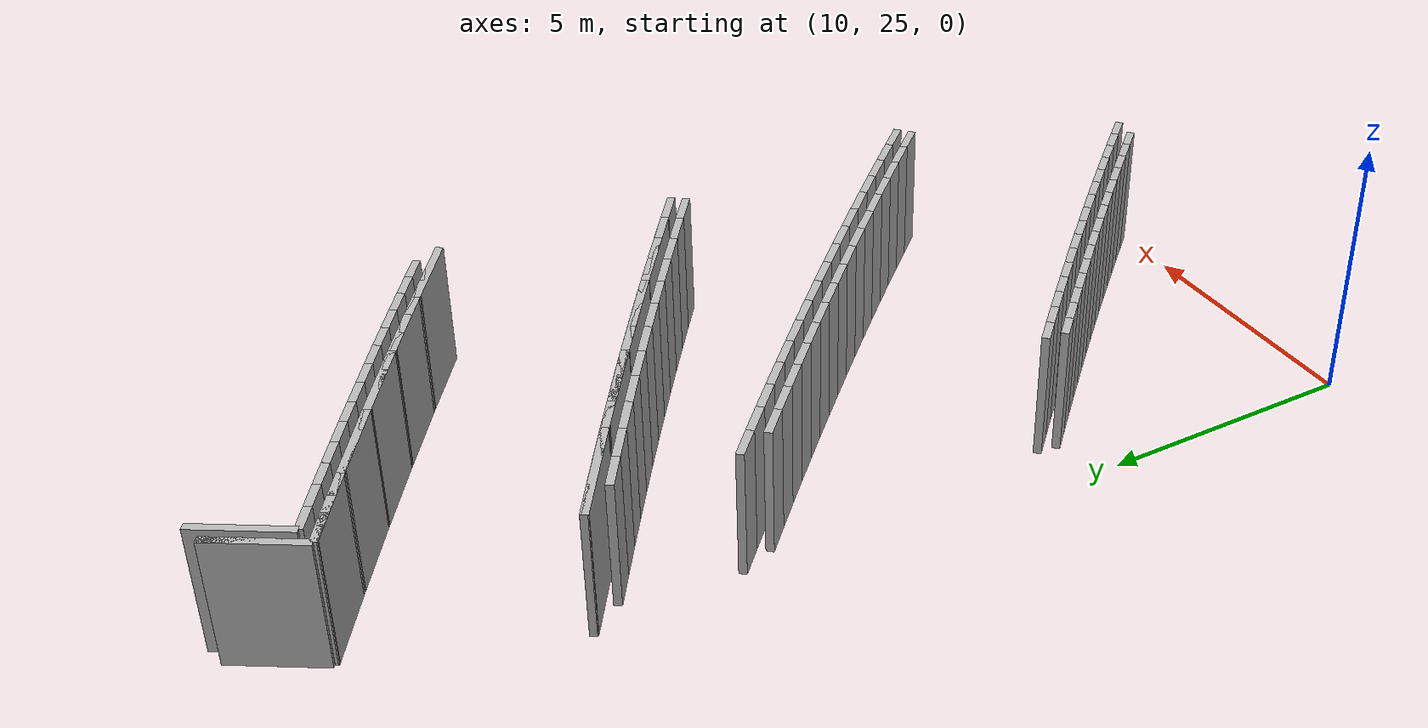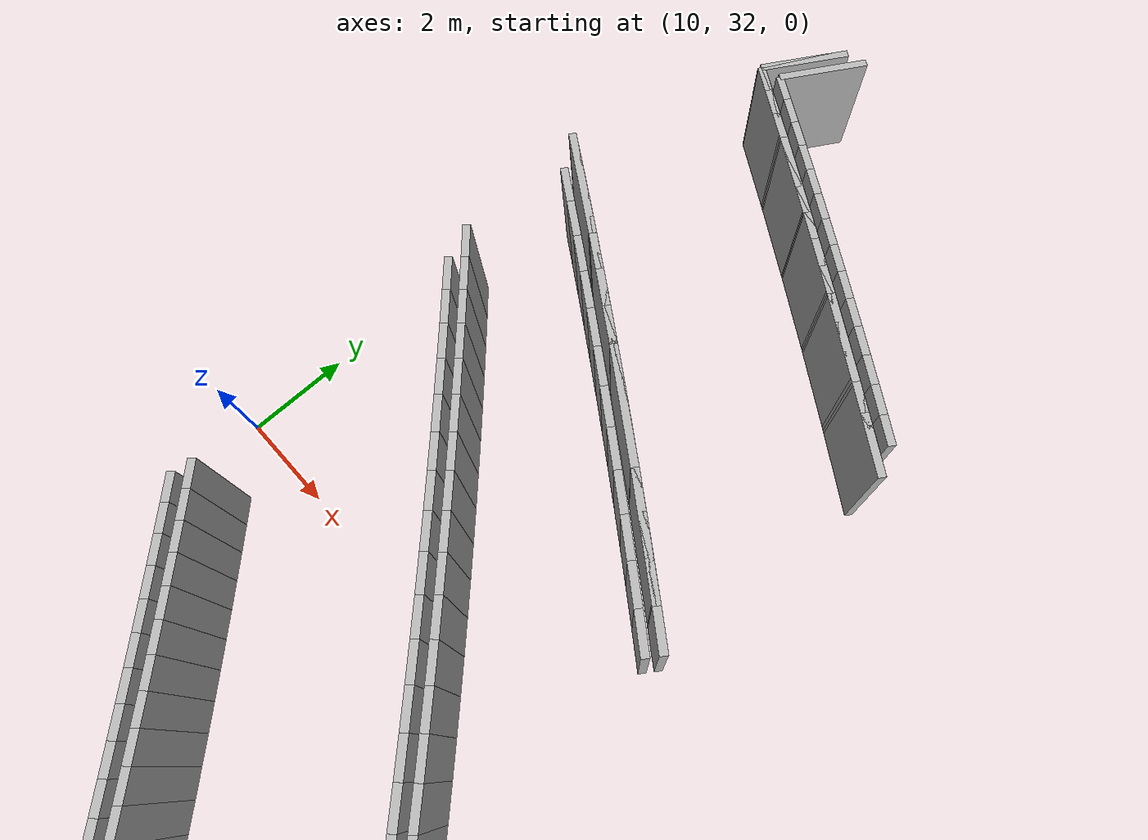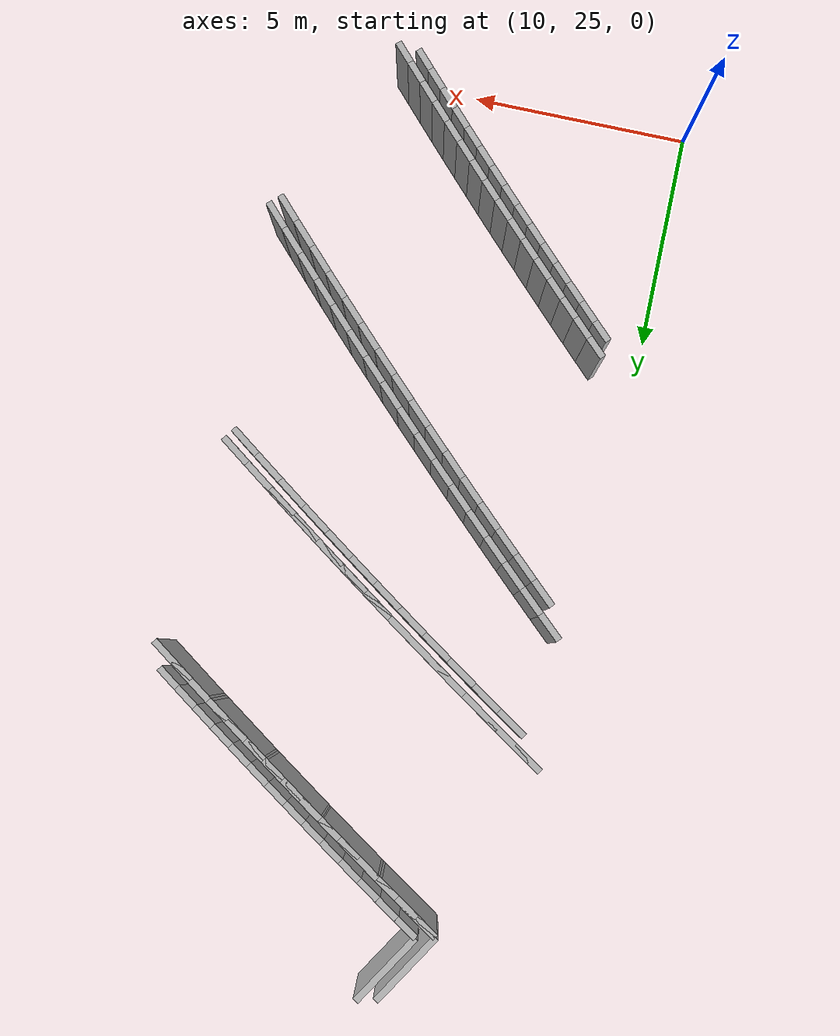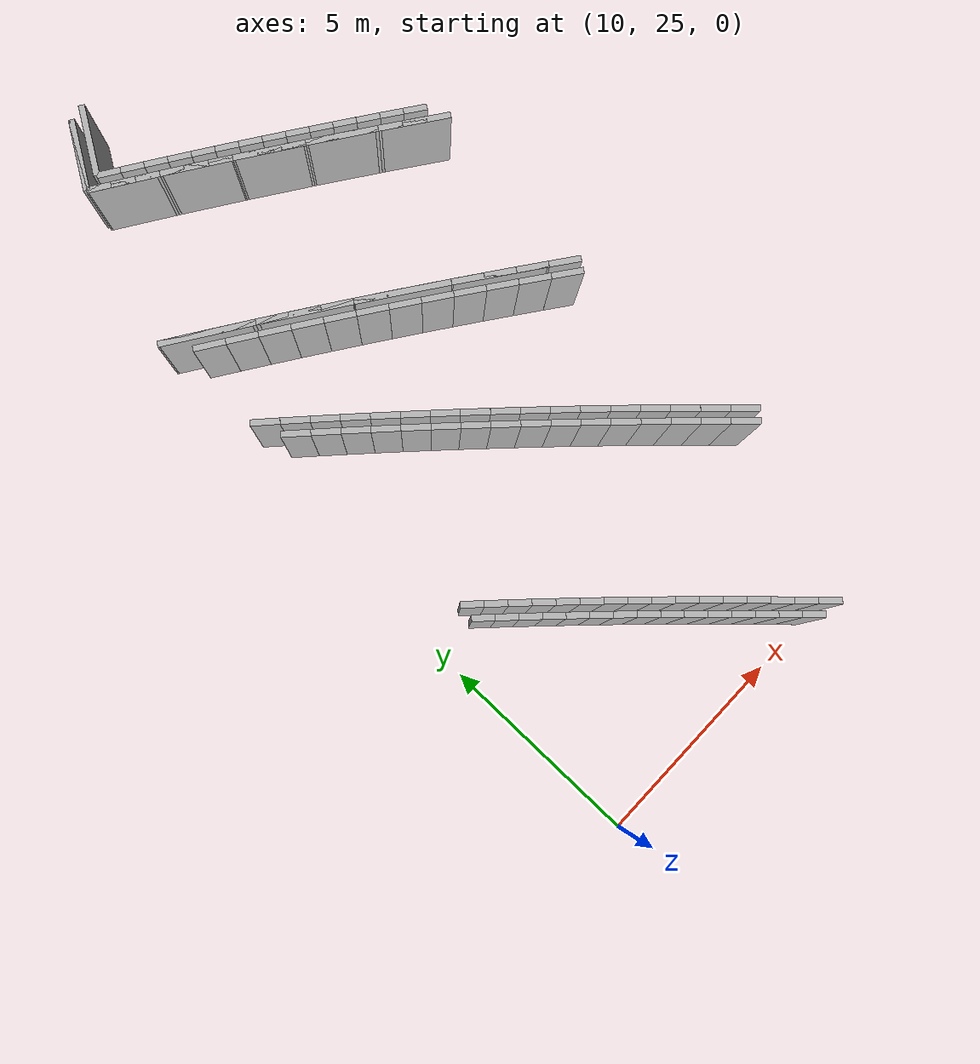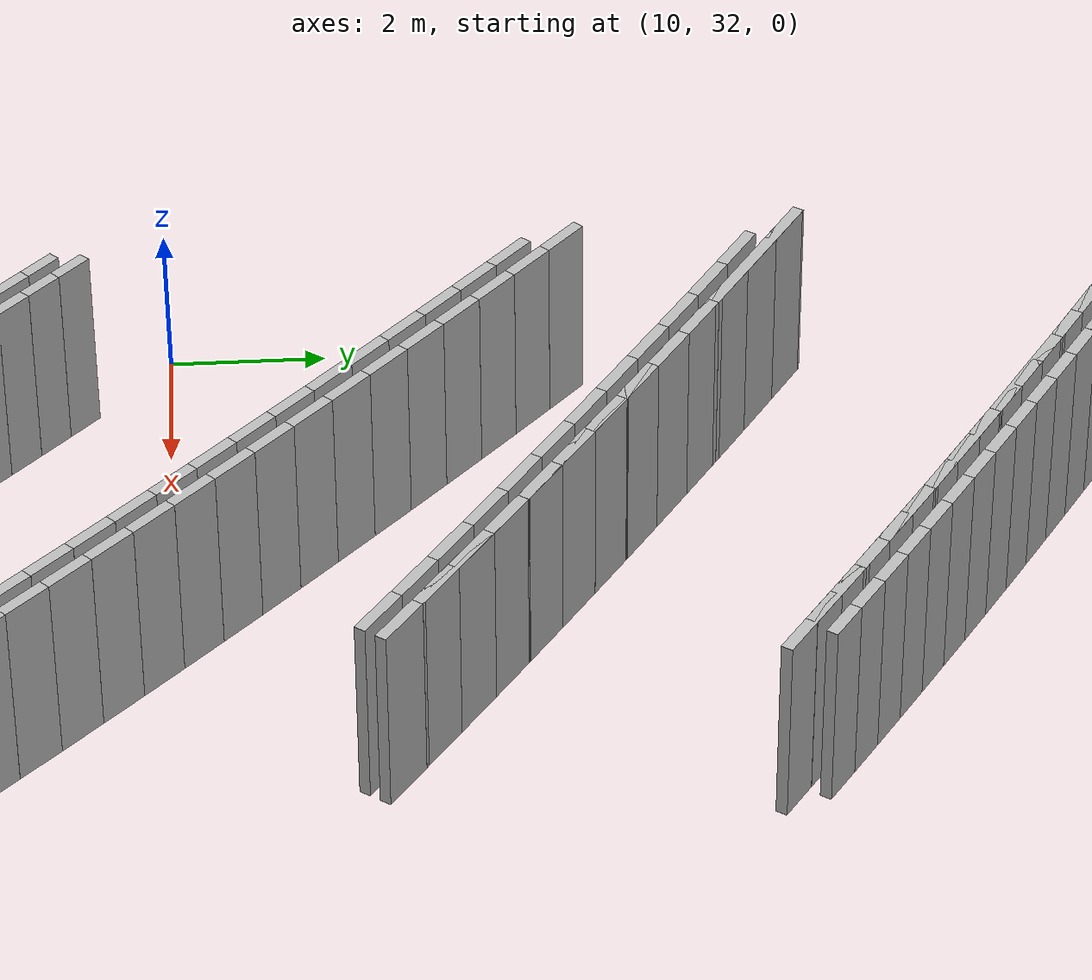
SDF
<sdf version="1.6">
 <model name="sps_0506">
  <static>1</static>
  <allow_auto_disable>0</allow_auto_disable>
  <link name="Wall1528">
   <collision name="collision"><geometry><box><size>1.79999 0.15 2.5</size></box></geometry></collision>
   <visual name="visual">
    <geometry><box><size>1.79999 0.15 2.5</size></box></geometry>
    <transparency>0.0</transparency>
   </visual>
   <pose>12.5018 44.6357 1.25 0 0 -2.13528</pose>
  </link>
  <link name="Wall1835">
   <collision name="collision"><geometry><box><size>1.79998 0.15 2.5</size></box></geometry></collision>
   <visual name="visual">
    <geometry><box><size>1.79998 0.15 2.5</size></box></geometry>
    <transparency>0.0</transparency>
   </visual>
   <pose>12.9161 44.7287 1.25 0 -0 1.00639</pose>
  </link>
  <link name="Wall3640">
   <collision name="collision"><geometry><box><size>1.80002 0.15 2.5</size></box></geometry></collision>
   <visual name="visual">
    <geometry><box><size>1.80002 0.15 2.5</size></box></geometry>
    <transparency>0.0</transparency>
   </visual>
   <pose>12.502 44.6357 1.25 0 0 -2.1353</pose>
  </link>
  <link name="Wall3641">
   <collision name="collision"><geometry><box><size>1.72938 0.15 2.5</size></box></geometry></collision>
   <visual name="visual">
    <geometry><box><size>1.72938 0.15 2.5</size></box></geometry>
    <transparency>0.0</transparency>
   </visual>
   <pose>12.7476 43.4073 1.25 0 0 -0.571929</pose>
  </link>
  <link name="Wall3642">
   <collision name="collision"><geometry><box><size>1.72959 0.15 2.5</size></box></geometry></collision>
   <visual name="visual">
    <geometry><box><size>1.72959 0.15 2.5</size></box></geometry>
    <transparency>0.0</transparency>
   </visual>
   <pose>14.1968 42.4636 1.25 0 0 -0.582463</pose>
  </link>
  <link name="Wall3643">
   <collision name="collision"><geometry><box><size>1.7295 0.15 2.5</size></box></geometry></collision>
   <visual name="visual">
    <geometry><box><size>1.7295 0.15 2.5</size></box></geometry>
    <transparency>0.0</transparency>
   </visual>
   <pose>15.6363 41.5048 1.25 0 0 -0.59276</pose>
  </link>
  <link name="Wall3644">
   <collision name="collision"><geometry><box><size>1.72963 0.15 2.5</size></box></geometry></collision>
   <visual name="visual">
    <geometry><box><size>1.72963 0.15 2.5</size></box></geometry>
    <transparency>0.0</transparency>
   </visual>
   <pose>17.0657 40.5311 1.25 0 0 -0.603212</pose>
  </link>
  <link name="Wall3645">
   <collision name="collision"><geometry><box><size>1.72955 0.15 2.5</size></box></geometry></collision>
   <visual name="visual">
    <geometry><box><size>1.72955 0.15 2.5</size></box></geometry>
    <transparency>0.0</transparency>
   </visual>
   <pose>18.4849 39.5425 1.25 0 0 -0.613649</pose>
  </link>
  <link name="Wall3670">
   <collision name="collision"><geometry><box><size>2.27698 0.15 2.5</size></box></geometry></collision>
   <visual name="visual">
    <geometry><box><size>2.27698 0.15 2.5</size></box></geometry>
    <transparency>0.0</transparency>
   </visual>
   <pose>17.1625 35.5677 1.25 0 -0 2.52041</pose>
  </link>
  <link name="Wall3671">
   <collision name="collision"><geometry><box><size>2.27686 0.15 2.5</size></box></geometry></collision>
   <visual name="visual">
    <geometry><box><size>2.27686 0.15 2.5</size></box></geometry>
    <transparency>0.0</transparency>
   </visual>
   <pose>15.3017 36.8799 1.25 0 -0 2.53435</pose>
  </link>
  <link name="Wall3672">
   <collision name="collision"><geometry><box><size>2.27673 0.15 2.5</size></box></geometry></collision>
   <visual name="visual">
    <geometry><box><size>2.27673 0.15 2.5</size></box></geometry>
    <transparency>0.0</transparency>
   </visual>
   <pose>13.4231 38.166 1.25 0 -0 2.54824</pose>
  </link>
  <link name="Wall3673">
   <collision name="collision"><geometry><box><size>2.27685 0.15 2.5</size></box></geometry></collision>
   <visual name="visual">
    <geometry><box><size>2.27685 0.15 2.5</size></box></geometry>
    <transparency>0.0</transparency>
   </visual>
   <pose>11.5266 39.4257 1.25 0 -0 2.56231</pose>
  </link>
  <link name="Wall6894">
   <collision name="collision"><geometry><box><size>0.576575 0.15 2.5</size></box></geometry></collision>
   <visual name="visual">
    <geometry><box><size>0.576575 0.15 2.5</size></box></geometry>
    <transparency>0.0</transparency>
   </visual>
   <pose>18.4858 39.5441 1.25 0 -0 2.52793</pose>
  </link>
  <link name="Wall6895">
   <collision name="collision"><geometry><box><size>0.576678 0.15 2.5</size></box></geometry></collision>
   <visual name="visual">
    <geometry><box><size>0.576678 0.15 2.5</size></box></geometry>
    <transparency>0.0</transparency>
   </visual>
   <pose>18.0138 39.8753 1.25 0 -0 2.53154</pose>
  </link>
  <link name="Wall6896">
   <collision name="collision"><geometry><box><size>0.576522 0.15 2.5</size></box></geometry></collision>
   <visual name="visual">
    <geometry><box><size>0.576522 0.15 2.5</size></box></geometry>
    <transparency>0.0</transparency>
   </visual>
   <pose>17.5406 40.2049 1.25 0 -0 2.53471</pose>
  </link>
  <link name="Wall6897">
   <collision name="collision"><geometry><box><size>0.576368 0.15 2.5</size></box></geometry></collision>
   <visual name="visual">
    <geometry><box><size>0.576368 0.15 2.5</size></box></geometry>
    <transparency>0.0</transparency>
   </visual>
   <pose>17.0666 40.5328 1.25 0 -0 2.53826</pose>
  </link>
  <link name="Wall6898">
   <collision name="collision"><geometry><box><size>0.576593 0.15 2.5</size></box></geometry></collision>
   <visual name="visual">
    <geometry><box><size>0.576593 0.15 2.5</size></box></geometry>
    <transparency>0.0</transparency>
   </visual>
   <pose>16.5912 40.859 1.25 0 -0 2.54199</pose>
  </link>
  <link name="Wall6899">
   <collision name="collision"><geometry><box><size>0.576404 0.15 2.5</size></box></geometry></collision>
   <visual name="visual">
    <geometry><box><size>0.576404 0.15 2.5</size></box></geometry>
    <transparency>0.0</transparency>
   </visual>
   <pose>16.1147 41.1835 1.25 0 -0 2.54548</pose>
  </link>
  <link name="Wall6900">
   <collision name="collision"><geometry><box><size>0.576629 0.15 2.5</size></box></geometry></collision>
   <visual name="visual">
    <geometry><box><size>0.576629 0.15 2.5</size></box></geometry>
    <transparency>0.0</transparency>
   </visual>
   <pose>15.6371 41.5064 1.25 0 -0 2.54869</pose>
  </link>
  <link name="Wall6901">
   <collision name="collision"><geometry><box><size>0.576419 0.15 2.5</size></box></geometry></collision>
   <visual name="visual">
    <geometry><box><size>0.576419 0.15 2.5</size></box></geometry>
    <transparency>0.0</transparency>
   </visual>
   <pose>15.1584 41.8277 1.25 0 -0 2.55227</pose>
  </link>
  <link name="Wall6902">
   <collision name="collision"><geometry><box><size>0.576589 0.15 2.5</size></box></geometry></collision>
   <visual name="visual">
    <geometry><box><size>0.576589 0.15 2.5</size></box></geometry>
    <transparency>0.0</transparency>
   </visual>
   <pose>14.6786 42.1473 1.25 0 -0 2.55565</pose>
  </link>
  <link name="Wall6903">
   <collision name="collision"><geometry><box><size>0.576361 0.15 2.5</size></box></geometry></collision>
   <visual name="visual">
    <geometry><box><size>0.576361 0.15 2.5</size></box></geometry>
    <transparency>0.0</transparency>
   </visual>
   <pose>14.1977 42.4652 1.25 0 -0 2.55932</pose>
  </link>
  <link name="Wall6904">
   <collision name="collision"><geometry><box><size>0.576544 0.15 2.5</size></box></geometry></collision>
   <visual name="visual">
    <geometry><box><size>0.576544 0.15 2.5</size></box></geometry>
    <transparency>0.0</transparency>
   </visual>
   <pose>13.7158 42.7814 1.25 0 -0 2.56269</pose>
  </link>
  <link name="Wall6905">
   <collision name="collision"><geometry><box><size>0.576463 0.15 2.5</size></box></geometry></collision>
   <visual name="visual">
    <geometry><box><size>0.576463 0.15 2.5</size></box></geometry>
    <transparency>0.0</transparency>
   </visual>
   <pose>13.2327 43.096 1.25 0 -0 2.56601</pose>
  </link>
  <link name="Wall6906">
   <collision name="collision"><geometry><box><size>0.576528 0.15 2.5</size></box></geometry></collision>
   <visual name="visual">
    <geometry><box><size>0.576528 0.15 2.5</size></box></geometry>
    <transparency>0.0</transparency>
   </visual>
   <pose>12.7485 43.4089 1.25 0 -0 2.56974</pose>
  </link>
  <link name="Wall6907">
   <collision name="collision"><geometry><box><size>0.576493 0.15 2.5</size></box></geometry></collision>
   <visual name="visual">
    <geometry><box><size>0.576493 0.15 2.5</size></box></geometry>
    <transparency>0.0</transparency>
   </visual>
   <pose>12.2632 43.7201 1.25 0 -0 2.57297</pose>
  </link>
  <link name="Wall9599">
   <collision name="collision"><geometry><box><size>0.757581 0.15 2.5</size></box></geometry></collision>
   <visual name="visual">
    <geometry><box><size>0.757581 0.15 2.5</size></box></geometry>
    <transparency>0.0</transparency>
   </visual>
   <pose>18.2241 34.4485 1.25 0 -0 2.51085</pose>
  </link>
  <link name="Wall9600">
   <collision name="collision"><geometry><box><size>0.757552 0.15 2.5</size></box></geometry></collision>
   <visual name="visual">
    <geometry><box><size>0.757552 0.15 2.5</size></box></geometry>
    <transparency>0.0</transparency>
   </visual>
   <pose>17.6113 34.8938 1.25 0 -0 2.5157</pose>
  </link>
  <link name="Wall9601">
   <collision name="collision"><geometry><box><size>0.757632 0.15 2.5</size></box></geometry></collision>
   <visual name="visual">
    <geometry><box><size>0.757632 0.15 2.5</size></box></geometry>
    <transparency>0.0</transparency>
   </visual>
   <pose>16.9963 35.3362 1.25 0 -0 2.52025</pose>
  </link>
  <link name="Wall9602">
   <collision name="collision"><geometry><box><size>0.757652 0.15 2.5</size></box></geometry></collision>
   <visual name="visual">
    <geometry><box><size>0.757652 0.15 2.5</size></box></geometry>
    <transparency>0.0</transparency>
   </visual>
   <pose>16.3791 35.7757 1.25 0 -0 2.52521</pose>
  </link>
  <link name="Wall9603">
   <collision name="collision"><geometry><box><size>0.75748 0.15 2.5</size></box></geometry></collision>
   <visual name="visual">
    <geometry><box><size>0.75748 0.15 2.5</size></box></geometry>
    <transparency>0.0</transparency>
   </visual>
   <pose>15.76 36.2123 1.25 0 -0 2.52959</pose>
  </link>
  <link name="Wall9604">
   <collision name="collision"><geometry><box><size>0.75772 0.15 2.5</size></box></geometry></collision>
   <visual name="visual">
    <geometry><box><size>0.75772 0.15 2.5</size></box></geometry>
    <transparency>0.0</transparency>
   </visual>
   <pose>15.1388 36.646 1.25 0 -0 2.53462</pose>
  </link>
  <link name="Wall9605">
   <collision name="collision"><geometry><box><size>0.757526 0.15 2.5</size></box></geometry></collision>
   <visual name="visual">
    <geometry><box><size>0.757526 0.15 2.5</size></box></geometry>
    <transparency>0.0</transparency>
   </visual>
   <pose>14.5156 37.0767 1.25 0 -0 2.53924</pose>
  </link>
  <link name="Wall9606">
   <collision name="collision"><geometry><box><size>0.757603 0.15 2.5</size></box></geometry></collision>
   <visual name="visual">
    <geometry><box><size>0.757603 0.15 2.5</size></box></geometry>
    <transparency>0.0</transparency>
   </visual>
   <pose>13.8903 37.5045 1.25 0 -0 2.5438</pose>
  </link>
  <link name="Wall9607">
   <collision name="collision"><geometry><box><size>0.757694 0.15 2.5</size></box></geometry></collision>
   <visual name="visual">
    <geometry><box><size>0.757694 0.15 2.5</size></box></geometry>
    <transparency>0.0</transparency>
   </visual>
   <pose>13.2631 37.9294 1.25 0 -0 2.54865</pose>
  </link>
  <link name="Wall9608">
   <collision name="collision"><geometry><box><size>0.757601 0.15 2.5</size></box></geometry></collision>
   <visual name="visual">
    <geometry><box><size>0.757601 0.15 2.5</size></box></geometry>
    <transparency>0.0</transparency>
   </visual>
   <pose>12.6338 38.3513 1.25 0 -0 2.55332</pose>
  </link>
  <link name="Wall9609">
   <collision name="collision"><geometry><box><size>0.757626 0.15 2.5</size></box></geometry></collision>
   <visual name="visual">
    <geometry><box><size>0.757626 0.15 2.5</size></box></geometry>
    <transparency>0.0</transparency>
   </visual>
   <pose>12.0024 38.7701 1.25 0 -0 2.55837</pose>
  </link>
  <link name="Wall9610">
   <collision name="collision"><geometry><box><size>0.757531 0.15 2.5</size></box></geometry></collision>
   <visual name="visual">
    <geometry><box><size>0.757531 0.15 2.5</size></box></geometry>
    <transparency>0.0</transparency>
   </visual>
   <pose>11.3692 39.1859 1.25 0 -0 2.56282</pose>
  </link>
  <link name="Wall19232">
   <collision name="collision"><geometry><box><size>0.516722 0.15 2.5</size></box></geometry></collision>
   <visual name="visual">
    <geometry><box><size>0.516722 0.15 2.5</size></box></geometry>
    <transparency>0.0</transparency>
   </visual>
   <pose>16.2039 25.2878 1.25 0 -0 2.3181</pose>
  </link>
  <link name="Wall19233">
   <collision name="collision"><geometry><box><size>0.516784 0.15 2.5</size></box></geometry></collision>
   <visual name="visual">
    <geometry><box><size>0.516784 0.15 2.5</size></box></geometry>
    <transparency>0.0</transparency>
   </visual>
   <pose>15.852 25.6662 1.25 0 -0 2.3217</pose>
  </link>
  <link name="Wall19234">
   <collision name="collision"><geometry><box><size>0.516735 0.15 2.5</size></box></geometry></collision>
   <visual name="visual">
    <geometry><box><size>0.516735 0.15 2.5</size></box></geometry>
    <transparency>0.0</transparency>
   </visual>
   <pose>15.4989 26.0435 1.25 0 -0 2.32453</pose>
  </link>
  <link name="Wall19235">
   <collision name="collision"><geometry><box><size>0.516679 0.15 2.5</size></box></geometry></collision>
   <visual name="visual">
    <geometry><box><size>0.516679 0.15 2.5</size></box></geometry>
    <transparency>0.0</transparency>
   </visual>
   <pose>15.1446 26.4196 1.25 0 -0 2.32821</pose>
  </link>
  <link name="Wall19236">
   <collision name="collision"><geometry><box><size>0.516892 0.15 2.5</size></box></geometry></collision>
   <visual name="visual">
    <geometry><box><size>0.516892 0.15 2.5</size></box></geometry>
    <transparency>0.0</transparency>
   </visual>
   <pose>14.7889 26.7945 1.25 0 -0 2.33156</pose>
  </link>
  <link name="Wall19237">
   <collision name="collision"><geometry><box><size>0.51672 0.15 2.5</size></box></geometry></collision>
   <visual name="visual">
    <geometry><box><size>0.51672 0.15 2.5</size></box></geometry>
    <transparency>0.0</transparency>
   </visual>
   <pose>14.4319 27.1682 1.25 0 -0 2.33514</pose>
  </link>
  <link name="Wall19238">
   <collision name="collision"><geometry><box><size>0.516731 0.15 2.5</size></box></geometry></collision>
   <visual name="visual">
    <geometry><box><size>0.516731 0.15 2.5</size></box></geometry>
    <transparency>0.0</transparency>
   </visual>
   <pose>14.0737 27.5406 1.25 0 -0 2.3384</pose>
  </link>
  <link name="Wall19239">
   <collision name="collision"><geometry><box><size>0.516792 0.15 2.5</size></box></geometry></collision>
   <visual name="visual">
    <geometry><box><size>0.516792 0.15 2.5</size></box></geometry>
    <transparency>0.0</transparency>
   </visual>
   <pose>13.7143 27.9119 1.25 0 -0 2.34141</pose>
  </link>
  <link name="Wall19240">
   <collision name="collision"><geometry><box><size>0.516638 0.15 2.5</size></box></geometry></collision>
   <visual name="visual">
    <geometry><box><size>0.516638 0.15 2.5</size></box></geometry>
    <transparency>0.0</transparency>
   </visual>
   <pose>13.3537 28.282 1.25 0 -0 2.345</pose>
  </link>
  <link name="Wall19241">
   <collision name="collision"><geometry><box><size>0.516794 0.15 2.5</size></box></geometry></collision>
   <visual name="visual">
    <geometry><box><size>0.516794 0.15 2.5</size></box></geometry>
    <transparency>0.0</transparency>
   </visual>
   <pose>12.9918 28.6508 1.25 0 -0 2.34851</pose>
  </link>
  <link name="Wall19242">
   <collision name="collision"><geometry><box><size>0.51687 0.15 2.5</size></box></geometry></collision>
   <visual name="visual">
    <geometry><box><size>0.51687 0.15 2.5</size></box></geometry>
    <transparency>0.0</transparency>
   </visual>
   <pose>12.6286 29.0185 1.25 0 -0 2.35152</pose>
  </link>
  <link name="Wall19243">
   <collision name="collision"><geometry><box><size>0.516779 0.15 2.5</size></box></geometry></collision>
   <visual name="visual">
    <geometry><box><size>0.516779 0.15 2.5</size></box></geometry>
    <transparency>0.0</transparency>
   </visual>
   <pose>12.2642 29.385 1.25 0 -0 2.35519</pose>
  </link>
  <link name="Wall19244">
   <collision name="collision"><geometry><box><size>0.516736 0.15 2.5</size></box></geometry></collision>
   <visual name="visual">
    <geometry><box><size>0.516736 0.15 2.5</size></box></geometry>
    <transparency>0.0</transparency>
   </visual>
   <pose>11.8986 29.7502 1.25 0 -0 2.35828</pose>
  </link>
  <link name="Wall19245">
   <collision name="collision"><geometry><box><size>0.516786 0.15 2.5</size></box></geometry></collision>
   <visual name="visual">
    <geometry><box><size>0.516786 0.15 2.5</size></box></geometry>
    <transparency>0.0</transparency>
   </visual>
   <pose>11.5318 30.1142 1.25 0 -0 2.36171</pose>
  </link>
  <link name="Wall19246">
   <collision name="collision"><geometry><box><size>0.516627 0.15 2.5</size></box></geometry></collision>
   <visual name="visual">
    <geometry><box><size>0.516627 0.15 2.5</size></box></geometry>
    <transparency>0.0</transparency>
   </visual>
   <pose>11.1637 30.4769 1.25 0 -0 2.36522</pose>
  </link>
  <link name="Wall21096">
   <collision name="collision"><geometry><box><size>0.758878 0.15 2.5</size></box></geometry></collision>
   <visual name="visual">
    <geometry><box><size>0.758878 0.15 2.5</size></box></geometry>
    <transparency>0.0</transparency>
   </visual>
   <pose>18.3943 34.6814 1.25 0 -0 2.51111</pose>
  </link>
  <link name="Wall21097">
   <collision name="collision"><geometry><box><size>0.758857 0.15 2.5</size></box></geometry></collision>
   <visual name="visual">
    <geometry><box><size>0.758857 0.15 2.5</size></box></geometry>
    <transparency>0.0</transparency>
   </visual>
   <pose>17.7804 35.1274 1.25 0 -0 2.51566</pose>
  </link>
  <link name="Wall21098">
   <collision name="collision"><geometry><box><size>0.759037 0.15 2.5</size></box></geometry></collision>
   <visual name="visual">
    <geometry><box><size>0.759037 0.15 2.5</size></box></geometry>
    <transparency>0.0</transparency>
   </visual>
   <pose>17.1643 35.5706 1.25 0 -0 2.52029</pose>
  </link>
  <link name="Wall21099">
   <collision name="collision"><geometry><box><size>0.758907 0.15 2.5</size></box></geometry></collision>
   <visual name="visual">
    <geometry><box><size>0.758907 0.15 2.5</size></box></geometry>
    <transparency>0.0</transparency>
   </visual>
   <pose>16.5461 36.0109 1.25 0 -0 2.5251</pose>
  </link>
  <link name="Wall21100">
   <collision name="collision"><geometry><box><size>0.758935 0.15 2.5</size></box></geometry></collision>
   <visual name="visual">
    <geometry><box><size>0.758935 0.15 2.5</size></box></geometry>
    <transparency>0.0</transparency>
   </visual>
   <pose>15.9259 36.4483 1.25 0 -0 2.52965</pose>
  </link>
  <link name="Wall21101">
   <collision name="collision"><geometry><box><size>0.75906 0.15 2.5</size></box></geometry></collision>
   <visual name="visual">
    <geometry><box><size>0.75906 0.15 2.5</size></box></geometry>
    <transparency>0.0</transparency>
   </visual>
   <pose>15.3036 36.8828 1.25 0 -0 2.53448</pose>
  </link>
  <link name="Wall21102">
   <collision name="collision"><geometry><box><size>0.758884 0.15 2.5</size></box></geometry></collision>
   <visual name="visual">
    <geometry><box><size>0.758884 0.15 2.5</size></box></geometry>
    <transparency>0.0</transparency>
   </visual>
   <pose>14.6793 37.3144 1.25 0 -0 2.53891</pose>
  </link>
  <link name="Wall21103">
   <collision name="collision"><geometry><box><size>0.759008 0.15 2.5</size></box></geometry></collision>
   <visual name="visual">
    <geometry><box><size>0.759008 0.15 2.5</size></box></geometry>
    <transparency>0.0</transparency>
   </visual>
   <pose>14.053 37.7431 1.25 0 -0 2.5438</pose>
  </link>
  <link name="Wall21104">
   <collision name="collision"><geometry><box><size>0.758846 0.15 2.5</size></box></geometry></collision>
   <visual name="visual">
    <geometry><box><size>0.758846 0.15 2.5</size></box></geometry>
    <transparency>0.0</transparency>
   </visual>
   <pose>13.4247 38.1688 1.25 0 -0 2.54841</pose>
  </link>
  <link name="Wall21105">
   <collision name="collision"><geometry><box><size>0.758989 0.15 2.5</size></box></geometry></collision>
   <visual name="visual">
    <geometry><box><size>0.758989 0.15 2.5</size></box></geometry>
    <transparency>0.0</transparency>
   </visual>
   <pose>12.7945 38.5916 1.25 0 -0 2.5529</pose>
  </link>
  <link name="Wall21106">
   <collision name="collision"><geometry><box><size>0.758875 0.15 2.5</size></box></geometry></collision>
   <visual name="visual">
    <geometry><box><size>0.758875 0.15 2.5</size></box></geometry>
    <transparency>0.0</transparency>
   </visual>
   <pose>12.1623 39.0116 1.25 0 -0 2.55734</pose>
  </link>
  <link name="Wall21107">
   <collision name="collision"><geometry><box><size>0.758967 0.15 2.5</size></box></geometry></collision>
   <visual name="visual">
    <geometry><box><size>0.758967 0.15 2.5</size></box></geometry>
    <transparency>0.0</transparency>
   </visual>
   <pose>11.5283 39.4286 1.25 0 -0 2.56242</pose>
  </link>
  <link name="Wall21108">
   <collision name="collision"><geometry><box><size>0.758971 0.15 2.5</size></box></geometry></collision>
   <visual name="visual">
    <geometry><box><size>0.758971 0.15 2.5</size></box></geometry>
    <transparency>0.0</transparency>
   </visual>
   <pose>10.8921 39.8426 1.25 0 -0 2.56684</pose>
  </link>
  <link name="Wall21149">
   <collision name="collision"><geometry><box><size>0.56105 0.15 2.5</size></box></geometry></collision>
   <visual name="visual">
    <geometry><box><size>0.56105 0.15 2.5</size></box></geometry>
    <transparency>0.0</transparency>
   </visual>
   <pose>18.7226 39.7487 1.25 0 -0 2.52773</pose>
  </link>
  <link name="Wall21150">
   <collision name="collision"><geometry><box><size>0.561042 0.15 2.5</size></box></geometry></collision>
   <visual name="visual">
    <geometry><box><size>0.561042 0.15 2.5</size></box></geometry>
    <transparency>0.0</transparency>
   </visual>
   <pose>18.2634 40.0712 1.25 0 -0 2.53078</pose>
  </link>
  <link name="Wall21151">
   <collision name="collision"><geometry><box><size>0.561031 0.15 2.5</size></box></geometry></collision>
   <visual name="visual">
    <geometry><box><size>0.561031 0.15 2.5</size></box></geometry>
    <transparency>0.0</transparency>
   </visual>
   <pose>17.8032 40.3921 1.25 0 -0 2.53461</pose>
  </link>
  <link name="Wall21152">
   <collision name="collision"><geometry><box><size>0.560931 0.15 2.5</size></box></geometry></collision>
   <visual name="visual">
    <geometry><box><size>0.560931 0.15 2.5</size></box></geometry>
    <transparency>0.0</transparency>
   </visual>
   <pose>17.3419 40.7113 1.25 0 -0 2.53793</pose>
  </link>
  <link name="Wall21153">
   <collision name="collision"><geometry><box><size>0.561004 0.15 2.5</size></box></geometry></collision>
   <visual name="visual">
    <geometry><box><size>0.561004 0.15 2.5</size></box></geometry>
    <transparency>0.0</transparency>
   </visual>
   <pose>16.8795 41.0289 1.25 0 -0 2.54158</pose>
  </link>
  <link name="Wall21154">
   <collision name="collision"><geometry><box><size>0.560903 0.15 2.5</size></box></geometry></collision>
   <visual name="visual">
    <geometry><box><size>0.560903 0.15 2.5</size></box></geometry>
    <transparency>0.0</transparency>
   </visual>
   <pose>16.4161 41.345 1.25 0 -0 2.54435</pose>
  </link>
  <link name="Wall21155">
   <collision name="collision"><geometry><box><size>0.560939 0.15 2.5</size></box></geometry></collision>
   <visual name="visual">
    <geometry><box><size>0.560939 0.15 2.5</size></box></geometry>
    <transparency>0.0</transparency>
   </visual>
   <pose>15.9517 41.6596 1.25 0 -0 2.54795</pose>
  </link>
  <link name="Wall21156">
   <collision name="collision"><geometry><box><size>0.561066 0.15 2.5</size></box></geometry></collision>
   <visual name="visual">
    <geometry><box><size>0.561066 0.15 2.5</size></box></geometry>
    <transparency>0.0</transparency>
   </visual>
   <pose>15.4862 41.9726 1.25 0 -0 2.55151</pose>
  </link>
  <link name="Wall21157">
   <collision name="collision"><geometry><box><size>0.560896 0.15 2.5</size></box></geometry></collision>
   <visual name="visual">
    <geometry><box><size>0.560896 0.15 2.5</size></box></geometry>
    <transparency>0.0</transparency>
   </visual>
   <pose>15.0196 42.284 1.25 0 -0 2.55471</pose>
  </link>
  <link name="Wall21158">
   <collision name="collision"><geometry><box><size>0.561139 0.15 2.5</size></box></geometry></collision>
   <visual name="visual">
    <geometry><box><size>0.561139 0.15 2.5</size></box></geometry>
    <transparency>0.0</transparency>
   </visual>
   <pose>14.5518 42.5938 1.25 0 -0 2.55839</pose>
  </link>
  <link name="Wall21159">
   <collision name="collision"><geometry><box><size>0.560897 0.15 2.5</size></box></geometry></collision>
   <visual name="visual">
    <geometry><box><size>0.560897 0.15 2.5</size></box></geometry>
    <transparency>0.0</transparency>
   </visual>
   <pose>14.0831 42.902 1.25 0 -0 2.56162</pose>
  </link>
  <link name="Wall21160">
   <collision name="collision"><geometry><box><size>0.560899 0.15 2.5</size></box></geometry></collision>
   <visual name="visual">
    <geometry><box><size>0.560899 0.15 2.5</size></box></geometry>
    <transparency>0.0</transparency>
   </visual>
   <pose>13.6134 43.2086 1.25 0 -0 2.565</pose>
  </link>
  <link name="Wall21161">
   <collision name="collision"><geometry><box><size>0.561009 0.15 2.5</size></box></geometry></collision>
   <visual name="visual">
    <geometry><box><size>0.561009 0.15 2.5</size></box></geometry>
    <transparency>0.0</transparency>
   </visual>
   <pose>13.1426 43.5136 1.25 0 -0 2.5685</pose>
  </link>
  <link name="Wall21162">
   <collision name="collision"><geometry><box><size>0.560869 0.15 2.5</size></box></geometry></collision>
   <visual name="visual">
    <geometry><box><size>0.560869 0.15 2.5</size></box></geometry>
    <transparency>0.0</transparency>
   </visual>
   <pose>12.6708 43.817 1.25 0 -0 2.5717</pose>
  </link>
  <link name="Wall24910">
   <collision name="collision"><geometry><box><size>0.52312 0.15 2.5</size></box></geometry></collision>
   <visual name="visual">
    <geometry><box><size>0.52312 0.15 2.5</size></box></geometry>
    <transparency>0.0</transparency>
   </visual>
   <pose>16.6765 25.2222 1.25 0 -0 2.31568</pose>
  </link>
  <link name="Wall24911">
   <collision name="collision"><geometry><box><size>0.523136 0.15 2.5</size></box></geometry></collision>
   <visual name="visual">
    <geometry><box><size>0.523136 0.15 2.5</size></box></geometry>
    <transparency>0.0</transparency>
   </visual>
   <pose>16.3213 25.6062 1.25 0 -0 2.31914</pose>
  </link>
  <link name="Wall24912">
   <collision name="collision"><geometry><box><size>0.523162 0.15 2.5</size></box></geometry></collision>
   <visual name="visual">
    <geometry><box><size>0.523162 0.15 2.5</size></box></geometry>
    <transparency>0.0</transparency>
   </visual>
   <pose>15.9647 25.989 1.25 0 -0 2.32245</pose>
  </link>
  <link name="Wall24913">
   <collision name="collision"><geometry><box><size>0.523368 0.15 2.5</size></box></geometry></collision>
   <visual name="visual">
    <geometry><box><size>0.523368 0.15 2.5</size></box></geometry>
    <transparency>0.0</transparency>
   </visual>
   <pose>15.6067 26.3707 1.25 0 -0 2.3256</pose>
  </link>
  <link name="Wall24914">
   <collision name="collision"><geometry><box><size>0.523185 0.15 2.5</size></box></geometry></collision>
   <visual name="visual">
    <geometry><box><size>0.523185 0.15 2.5</size></box></geometry>
    <transparency>0.0</transparency>
   </visual>
   <pose>15.2476 26.7512 1.25 0 -0 2.32913</pose>
  </link>
  <link name="Wall24915">
   <collision name="collision"><geometry><box><size>0.523267 0.15 2.5</size></box></geometry></collision>
   <visual name="visual">
    <geometry><box><size>0.523267 0.15 2.5</size></box></geometry>
    <transparency>0.0</transparency>
   </visual>
   <pose>14.887 27.1304 1.25 0 -0 2.33269</pose>
  </link>
  <link name="Wall24916">
   <collision name="collision"><geometry><box><size>0.523055 0.15 2.5</size></box></geometry></collision>
   <visual name="visual">
    <geometry><box><size>0.523055 0.15 2.5</size></box></geometry>
    <transparency>0.0</transparency>
   </visual>
   <pose>14.5253 27.5083 1.25 0 -0 2.33614</pose>
  </link>
  <link name="Wall24917">
   <collision name="collision"><geometry><box><size>0.523066 0.15 2.5</size></box></geometry></collision>
   <visual name="visual">
    <geometry><box><size>0.523066 0.15 2.5</size></box></geometry>
    <transparency>0.0</transparency>
   </visual>
   <pose>14.1623 27.8849 1.25 0 -0 2.33953</pose>
  </link>
  <link name="Wall24918">
   <collision name="collision"><geometry><box><size>0.523169 0.15 2.5</size></box></geometry></collision>
   <visual name="visual">
    <geometry><box><size>0.523169 0.15 2.5</size></box></geometry>
    <transparency>0.0</transparency>
   </visual>
   <pose>13.7979 28.2603 1.25 0 -0 2.34291</pose>
  </link>
  <link name="Wall24919">
   <collision name="collision"><geometry><box><size>0.523277 0.15 2.5</size></box></geometry></collision>
   <visual name="visual">
    <geometry><box><size>0.523277 0.15 2.5</size></box></geometry>
    <transparency>0.0</transparency>
   </visual>
   <pose>13.4322 28.6345 1.25 0 -0 2.34646</pose>
  </link>
  <link name="Wall24920">
   <collision name="collision"><geometry><box><size>0.523133 0.15 2.5</size></box></geometry></collision>
   <visual name="visual">
    <geometry><box><size>0.523133 0.15 2.5</size></box></geometry>
    <transparency>0.0</transparency>
   </visual>
   <pose>13.0652 29.0074 1.25 0 -0 2.35001</pose>
  </link>
  <link name="Wall24921">
   <collision name="collision"><geometry><box><size>0.523082 0.15 2.5</size></box></geometry></collision>
   <visual name="visual">
    <geometry><box><size>0.523082 0.15 2.5</size></box></geometry>
    <transparency>0.0</transparency>
   </visual>
   <pose>12.697 29.379 1.25 0 -0 2.35322</pose>
  </link>
  <link name="Wall24922">
   <collision name="collision"><geometry><box><size>0.523252 0.15 2.5</size></box></geometry></collision>
   <visual name="visual">
    <geometry><box><size>0.523252 0.15 2.5</size></box></geometry>
    <transparency>0.0</transparency>
   </visual>
   <pose>12.3277 29.7495 1.25 0 -0 2.35619</pose>
  </link>
  <link name="Wall24923">
   <collision name="collision"><geometry><box><size>0.523299 0.15 2.5</size></box></geometry></collision>
   <visual name="visual">
    <geometry><box><size>0.523299 0.15 2.5</size></box></geometry>
    <transparency>0.0</transparency>
   </visual>
   <pose>11.957 30.1188 1.25 0 -0 2.35991</pose>
  </link>
  <link name="Wall24924">
   <collision name="collision"><geometry><box><size>0.523137 0.15 2.5</size></box></geometry></collision>
   <visual name="visual">
    <geometry><box><size>0.523137 0.15 2.5</size></box></geometry>
    <transparency>0.0</transparency>
   </visual>
   <pose>11.585 30.4867 1.25 0 -0 2.36354</pose>
  </link>
  <link name="Wall24925">
   <collision name="collision"><geometry><box><size>0.523109 0.15 2.5</size></box></geometry></collision>
   <visual name="visual">
    <geometry><box><size>0.523109 0.15 2.5</size></box></geometry>
    <transparency>0.0</transparency>
   </visual>
   <pose>11.2118 30.8533 1.25 0 -0 2.36676</pose>
  </link>
  <link name="Wall24964">
   <collision name="collision"><geometry><box><size>0.673566 0.15 2.5</size></box></geometry></collision>
   <visual name="visual">
    <geometry><box><size>0.673566 0.15 2.5</size></box></geometry>
    <transparency>0.0</transparency>
   </visual>
   <pose>18.4307 29.2078 1.25 0 -0 2.32659</pose>
  </link>
  <link name="Wall24965">
   <collision name="collision"><geometry><box><size>0.6737 0.15 2.5</size></box></geometry></collision>
   <visual name="visual">
    <geometry><box><size>0.6737 0.15 2.5</size></box></geometry>
    <transparency>0.0</transparency>
   </visual>
   <pose>17.9676 29.697 1.25 0 -0 2.33102</pose>
  </link>
  <link name="Wall24966">
   <collision name="collision"><geometry><box><size>0.673719 0.15 2.5</size></box></geometry></collision>
   <visual name="visual">
    <geometry><box><size>0.673719 0.15 2.5</size></box></geometry>
    <transparency>0.0</transparency>
   </visual>
   <pose>17.5023 30.1842 1.25 0 -0 2.33537</pose>
  </link>
  <link name="Wall24967">
   <collision name="collision"><geometry><box><size>0.673538 0.15 2.5</size></box></geometry></collision>
   <visual name="visual">
    <geometry><box><size>0.673538 0.15 2.5</size></box></geometry>
    <transparency>0.0</transparency>
   </visual>
   <pose>17.035 30.6694 1.25 0 -0 2.33941</pose>
  </link>
  <link name="Wall24968">
   <collision name="collision"><geometry><box><size>0.673624 0.15 2.5</size></box></geometry></collision>
   <visual name="visual">
    <geometry><box><size>0.673624 0.15 2.5</size></box></geometry>
    <transparency>0.0</transparency>
   </visual>
   <pose>16.5657 31.1526 1.25 0 -0 2.34383</pose>
  </link>
  <link name="Wall24969">
   <collision name="collision"><geometry><box><size>0.673639 0.15 2.5</size></box></geometry></collision>
   <visual name="visual">
    <geometry><box><size>0.673639 0.15 2.5</size></box></geometry>
    <transparency>0.0</transparency>
   </visual>
   <pose>16.0943 31.6338 1.25 0 -0 2.34799</pose>
  </link>
  <link name="Wall24970">
   <collision name="collision"><geometry><box><size>0.673707 0.15 2.5</size></box></geometry></collision>
   <visual name="visual">
    <geometry><box><size>0.673707 0.15 2.5</size></box></geometry>
    <transparency>0.0</transparency>
   </visual>
   <pose>15.6207 32.113 1.25 0 -0 2.35248</pose>
  </link>
  <link name="Wall24971">
   <collision name="collision"><geometry><box><size>0.673573 0.15 2.5</size></box></geometry></collision>
   <visual name="visual">
    <geometry><box><size>0.673573 0.15 2.5</size></box></geometry>
    <transparency>0.0</transparency>
   </visual>
   <pose>15.1452 32.5901 1.25 0 -0 2.35677</pose>
  </link>
  <link name="Wall24972">
   <collision name="collision"><geometry><box><size>0.673796 0.15 2.5</size></box></geometry></collision>
   <visual name="visual">
    <geometry><box><size>0.673796 0.15 2.5</size></box></geometry>
    <transparency>0.0</transparency>
   </visual>
   <pose>14.6676 33.0652 1.25 0 -0 2.36081</pose>
  </link>
  <link name="Wall24973">
   <collision name="collision"><geometry><box><size>0.673731 0.15 2.5</size></box></geometry></collision>
   <visual name="visual">
    <geometry><box><size>0.673731 0.15 2.5</size></box></geometry>
    <transparency>0.0</transparency>
   </visual>
   <pose>14.1879 33.5383 1.25 0 -0 2.36542</pose>
  </link>
  <link name="Wall24974">
   <collision name="collision"><geometry><box><size>0.673504 0.15 2.5</size></box></geometry></collision>
   <visual name="visual">
    <geometry><box><size>0.673504 0.15 2.5</size></box></geometry>
    <transparency>0.0</transparency>
   </visual>
   <pose>13.7062 34.0092 1.25 0 -0 2.36965</pose>
  </link>
  <link name="Wall24975">
   <collision name="collision"><geometry><box><size>0.67368 0.15 2.5</size></box></geometry></collision>
   <visual name="visual">
    <geometry><box><size>0.67368 0.15 2.5</size></box></geometry>
    <transparency>0.0</transparency>
   </visual>
   <pose>13.2225 34.478 1.25 0 -0 2.37407</pose>
  </link>
  <link name="Wall24976">
   <collision name="collision"><geometry><box><size>0.673774 0.15 2.5</size></box></geometry></collision>
   <visual name="visual">
    <geometry><box><size>0.673774 0.15 2.5</size></box></geometry>
    <transparency>0.0</transparency>
   </visual>
   <pose>12.7367 34.9449 1.25 0 -0 2.37785</pose>
  </link>
  <link name="Wall24977">
   <collision name="collision"><geometry><box><size>0.673545 0.15 2.5</size></box></geometry></collision>
   <visual name="visual">
    <geometry><box><size>0.673545 0.15 2.5</size></box></geometry>
    <transparency>0.0</transparency>
   </visual>
   <pose>12.2491 35.4097 1.25 0 -0 2.3824</pose>
  </link>
  <link name="Wall24978">
   <collision name="collision"><geometry><box><size>0.673626 0.15 2.5</size></box></geometry></collision>
   <visual name="visual">
    <geometry><box><size>0.673626 0.15 2.5</size></box></geometry>
    <transparency>0.0</transparency>
   </visual>
   <pose>11.7595 35.8723 1.25 0 -0 2.38663</pose>
  </link>
  <link name="Wall24979">
   <collision name="collision"><geometry><box><size>0.673718 0.15 2.5</size></box></geometry></collision>
   <visual name="visual">
    <geometry><box><size>0.673718 0.15 2.5</size></box></geometry>
    <transparency>0.0</transparency>
   </visual>
   <pose>11.2679 36.3329 1.25 0 -0 2.39086</pose>
  </link>
  <link name="Wall25021">
   <collision name="collision"><geometry><box><size>0.675033 0.15 2.5</size></box></geometry></collision>
   <visual name="visual">
    <geometry><box><size>0.675033 0.15 2.5</size></box></geometry>
    <transparency>0.0</transparency>
   </visual>
   <pose>18.6504 29.4145 1.25 0 -0 2.32665</pose>
  </link>
  <link name="Wall25022">
   <collision name="collision"><geometry><box><size>0.674912 0.15 2.5</size></box></geometry></collision>
   <visual name="visual">
    <geometry><box><size>0.674912 0.15 2.5</size></box></geometry>
    <transparency>0.0</transparency>
   </visual>
   <pose>18.1864 29.9047 1.25 0 -0 2.3308</pose>
  </link>
  <link name="Wall25023">
   <collision name="collision"><geometry><box><size>0.674888 0.15 2.5</size></box></geometry></collision>
   <visual name="visual">
    <geometry><box><size>0.674888 0.15 2.5</size></box></geometry>
    <transparency>0.0</transparency>
   </visual>
   <pose>17.7204 30.3929 1.25 0 -0 2.33509</pose>
  </link>
  <link name="Wall25024">
   <collision name="collision"><geometry><box><size>0.674915 0.15 2.5</size></box></geometry></collision>
   <visual name="visual">
    <geometry><box><size>0.674915 0.15 2.5</size></box></geometry>
    <transparency>0.0</transparency>
   </visual>
   <pose>17.2522 30.879 1.25 0 -0 2.33982</pose>
  </link>
  <link name="Wall25025">
   <collision name="collision"><geometry><box><size>0.674964 0.15 2.5</size></box></geometry></collision>
   <visual name="visual">
    <geometry><box><size>0.674964 0.15 2.5</size></box></geometry>
    <transparency>0.0</transparency>
   </visual>
   <pose>16.7819 31.3631 1.25 0 -0 2.34366</pose>
  </link>
  <link name="Wall25026">
   <collision name="collision"><geometry><box><size>0.674889 0.15 2.5</size></box></geometry></collision>
   <visual name="visual">
    <geometry><box><size>0.674889 0.15 2.5</size></box></geometry>
    <transparency>0.0</transparency>
   </visual>
   <pose>16.3095 31.8452 1.25 0 -0 2.3482</pose>
  </link>
  <link name="Wall25027">
   <collision name="collision"><geometry><box><size>0.675002 0.15 2.5</size></box></geometry></collision>
   <visual name="visual">
    <geometry><box><size>0.675002 0.15 2.5</size></box></geometry>
    <transparency>0.0</transparency>
   </visual>
   <pose>15.8351 32.3253 1.25 0 -0 2.35223</pose>
  </link>
  <link name="Wall25028">
   <collision name="collision"><geometry><box><size>0.674997 0.15 2.5</size></box></geometry></collision>
   <visual name="visual">
    <geometry><box><size>0.674997 0.15 2.5</size></box></geometry>
    <transparency>0.0</transparency>
   </visual>
   <pose>15.3586 32.8034 1.25 0 -0 2.35683</pose>
  </link>
  <link name="Wall25029">
   <collision name="collision"><geometry><box><size>0.674703 0.15 2.5</size></box></geometry></collision>
   <visual name="visual">
    <geometry><box><size>0.674703 0.15 2.5</size></box></geometry>
    <transparency>0.0</transparency>
   </visual>
   <pose>14.8801 33.2793 1.25 0 -0 2.36099</pose>
  </link>
  <link name="Wall25030">
   <collision name="collision"><geometry><box><size>0.675068 0.15 2.5</size></box></geometry></collision>
   <visual name="visual">
    <geometry><box><size>0.675068 0.15 2.5</size></box></geometry>
    <transparency>0.0</transparency>
   </visual>
   <pose>14.3996 33.7532 1.25 0 -0 2.36521</pose>
  </link>
  <link name="Wall25031">
   <collision name="collision"><geometry><box><size>0.674885 0.15 2.5</size></box></geometry></collision>
   <visual name="visual">
    <geometry><box><size>0.674885 0.15 2.5</size></box></geometry>
    <transparency>0.0</transparency>
   </visual>
   <pose>13.917 34.2251 1.25 0 -0 2.36962</pose>
  </link>
  <link name="Wall25032">
   <collision name="collision"><geometry><box><size>0.674972 0.15 2.5</size></box></geometry></collision>
   <visual name="visual">
    <geometry><box><size>0.674972 0.15 2.5</size></box></geometry>
    <transparency>0.0</transparency>
   </visual>
   <pose>13.4325 34.6949 1.25 0 -0 2.37378</pose>
  </link>
  <link name="Wall25033">
   <collision name="collision"><geometry><box><size>0.675028 0.15 2.5</size></box></geometry></collision>
   <visual name="visual">
    <geometry><box><size>0.675028 0.15 2.5</size></box></geometry>
    <transparency>0.0</transparency>
   </visual>
   <pose>12.9459 35.1627 1.25 0 -0 2.378</pose>
  </link>
  <link name="Wall25034">
   <collision name="collision"><geometry><box><size>0.6748 0.15 2.5</size></box></geometry></collision>
   <visual name="visual">
    <geometry><box><size>0.6748 0.15 2.5</size></box></geometry>
    <transparency>0.0</transparency>
   </visual>
   <pose>12.4573 35.6283 1.25 0 -0 2.38255</pose>
  </link>
  <link name="Wall25035">
   <collision name="collision"><geometry><box><size>0.675051 0.15 2.5</size></box></geometry></collision>
   <visual name="visual">
    <geometry><box><size>0.675051 0.15 2.5</size></box></geometry>
    <transparency>0.0</transparency>
   </visual>
   <pose>11.9667 36.0918 1.25 0 -0 2.38663</pose>
  </link>
  <link name="Wall25036">
   <collision name="collision"><geometry><box><size>0.674849 0.15 2.5</size></box></geometry></collision>
   <visual name="visual">
    <geometry><box><size>0.674849 0.15 2.5</size></box></geometry>
    <transparency>0.0</transparency>
   </visual>
   <pose>11.4741 36.5532 1.25 0 -0 2.39118</pose>
  </link>
  <link name="Wall25037">
   <collision name="collision"><geometry><box><size>0.675089 0.15 2.5</size></box></geometry></collision>
   <visual name="visual">
    <geometry><box><size>0.675089 0.15 2.5</size></box></geometry>
    <transparency>0.0</transparency>
   </visual>
   <pose>10.9794 37.0124 1.25 0 -0 2.39559</pose>
  </link>
 </model>
</sdf>
